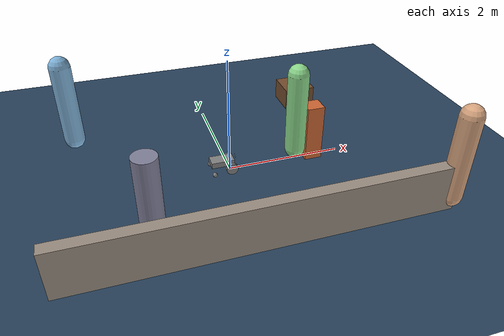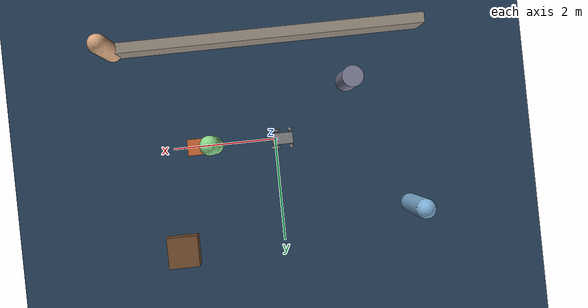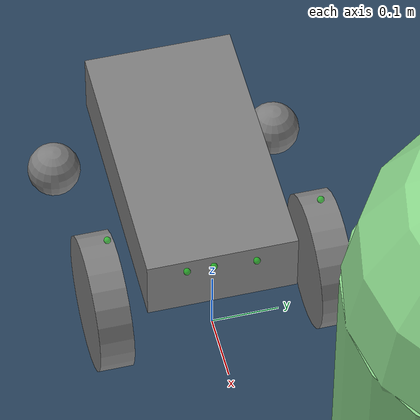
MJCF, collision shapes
<mujoco model="scene">
  <include file="magni.xml" />

  <statistic center="0 0 0.3" extent="6" />

  <visual>
    <headlight diffuse="0.6 0.6 0.6" ambient="0.3 0.3 0.3" specular="0 0 0" />
    <rgba haze="0.15 0.25 0.35 1" />
    <global azimuth="160" elevation="-20" />
  </visual>

  <asset>
    <texture type="skybox" builtin="gradient" rgb1="0.3 0.5 0.7" rgb2="0 0 0" width="512"
      height="3072" />
    <texture type="2d" name="groundplane" builtin="checker" mark="edge" rgb1="0.2 0.3 0.4"
      rgb2="0.1 0.2 0.3"
      markrgb="0.8 0.8 0.8" width="300" height="300" />
    <material name="groundplane" texture="groundplane" texuniform="true" texrepeat="5 5"
      reflectance="0.2" />
  </asset>

  <worldbody>
    <light pos="0 0 3.5" dir="0 0 -1" directional="true" />
    <geom name="floor" size="0 0 0.05" pos="0 0 0" type="plane" material="groundplane" />

    <geom name="obstacle"   type="box"      pos="1.5 0 0.5"     size="0.15 0.15 0.5"  rgba="0.8 0.4 0.2 1" />
    <geom name="column"     type="cylinder" pos="-1.5 -1 0.6"   size="0.2 0.6"        rgba="0.5 0.5 0.6 1" />
    <geom name="crate"      type="box"      pos="2 2 0.2"       size="0.3 0.3 0.2"    rgba="0.45 0.30 0.18 1" />
    <geom name="wall_south" type="box"      pos="0 -2 0.4"      size="3 0.1 0.4"      rgba="0.6 0.55 0.5 1" />

    <body name="human_a" mocap="true" pos="3 -2 0.9">
      <geom type="capsule" fromto="0 0 -0.7 0 0 0.7" size="0.18" rgba="0.85 0.65 0.5 1" />
    </body>
    <body name="human_b" mocap="true" pos="-2.5 1.5 0.9">
      <geom type="capsule" fromto="0 0 -0.7 0 0 0.7" size="0.18" rgba="0.5 0.7 0.85 1" />
    </body>
    <body name="human_c" mocap="true" pos="1.2 0 0.9">
      <geom type="capsule" fromto="0 0 -0.7 0 0 0.7" size="0.18" rgba="0.55 0.85 0.55 1" />
    </body>

    <camera name="overhead" pos="0 0 3" xyaxes="1 0 0 0 1 0" mode="fixed" />
    <camera name="follow"   pos="-1.5 -1.5 1.2" mode="targetbody" target="base" />
    <camera name="side"     pos="0 -2.5 0.5"    mode="targetbody" target="base" />
  </worldbody>
</mujoco>

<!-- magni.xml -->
<mujoco model="magni">
    <compiler angle="radian" meshdir="./assets" />
    <option timestep="0.002" integrator="implicitfast" />

    <default>
        <default class="visual">
            <geom type="mesh" contype="0" conaffinity="0" group="2" density="0" />
        </default>
        <default class="collision">
            <geom group="3" />
        </default>
        <default class="wheel">
            <joint type="hinge" axis="1 0 0" damping="0.1"
                armature="0.005" frictionloss="0.05" />
        </default>
    </default>

    <asset>
        <material name="chassis_light"    rgba="0.7922 0.8196 0.9333 1.0000" />
        <material name="accent_navy"      rgba="0.0000 0.0000 0.3765 1.0000" />
        <material name="hubcap_dark"      rgba="0.1373 0.1373 0.1373 1.0000" />
        <material name="axlecap_grey"     rgba="0.5020 0.5020 0.5020 1.0000" />
        <material name="body_black"       rgba="0.0588 0.0588 0.0863 1.0000" />
        <material name="body_blue"        rgba="0.0039 0.1216 0.4196 1.0000" />
        <material name="body_blue_dark"   rgba="0.0039 0.1294 0.2275 1.0000" />
        <material name="sonar_pcb"        rgba="0.0000 0.0000 0.5020 1.0000" />
        <material name="sonar_housing"    rgba="0.6667 0.6980 0.7686 1.0000" />
        <material name="sonar_led"        rgba="0.1373 0.2941 0.7490 1.0000" />
        <material name="sonar_chip"       rgba="0.0706 0.0706 0.0706 1.0000" />
        <material name="sonar_transducer" rgba="0.8941 0.9137 0.9294 1.0000" />

        <mesh name="caster_wheel__0" file="parts/caster_wheel__0.stl" inertia="shell" />
        <mesh name="caster_wheel__1" file="parts/caster_wheel__1.stl" inertia="shell" />
        <mesh name="caster_wheel__2" file="parts/caster_wheel__2.stl" inertia="shell" />
        <mesh name="caster_wheel__3" file="parts/caster_wheel__3.stl" inertia="shell" />
        <mesh name="caster_wheel__4" file="parts/caster_wheel__4.stl" inertia="shell" />
        <mesh name="caster_wheel__5" file="parts/caster_wheel__5.stl" inertia="shell" />
        <mesh name="front_wheel__0" file="parts/front_wheel__0.stl" inertia="shell" />
        <mesh name="front_wheel__1" file="parts/front_wheel__1.stl" inertia="shell" />
        <mesh name="front_wheel__2" file="parts/front_wheel__2.stl" inertia="shell" />
        <mesh name="magni_body__0" file="parts/magni_body__0.stl" inertia="shell" />
        <mesh name="magni_body__1" file="parts/magni_body__1.stl" inertia="shell" />
        <mesh name="magni_body__2" file="parts/magni_body__2.stl" inertia="shell" />
        <mesh name="magni_body__3" file="parts/magni_body__3.stl" inertia="shell" />
        <mesh name="magni_body__4" file="parts/magni_body__4.stl" inertia="shell" />
        <mesh name="sonar_hc-sr04__0" file="parts/sonar_hc-sr04__0.stl" inertia="shell" />
        <mesh name="sonar_hc-sr04__1" file="parts/sonar_hc-sr04__1.stl" inertia="shell" />
        <mesh name="sonar_hc-sr04__2" file="parts/sonar_hc-sr04__2.stl" inertia="shell" />
        <mesh name="sonar_hc-sr04__3" file="parts/sonar_hc-sr04__3.stl" inertia="shell" />
        <mesh name="sonar_hc-sr04__4" file="parts/sonar_hc-sr04__4.stl" inertia="shell" />
    </asset>

    <worldbody>
        <body name="base" pos="0 0 0.1">
            <freejoint />
            <inertial pos="-0.15 0 0.03" quat="0 0.707107 0 0.707107" mass="10"
                diaginertia="0.172704 0.150753 0.0594508" />
            <site name="imu" pos="0 0 0" size="0.01" rgba="1 0 0 0.5" />
            <body name="body" pos="-0.11 0 -0.029" quat="1 0 0 0">
                <inertial pos="-0.03 0 0.11" mass="1.0"
                    diaginertia="0.02 0.025 0.03" />
                <geom class="collision" type="box" pos="-0.03 0 0.11"
                    size="0.2 0.11 0.05" />
                <geom class="visual" mesh="magni_body__0" material="body_black" />
                <geom class="visual" mesh="magni_body__1" material="body_blue" />
                <geom class="visual" mesh="magni_body__2" material="body_blue" />
                <geom class="visual" mesh="magni_body__3" material="body_blue_dark" />
                <geom class="visual" mesh="magni_body__4" material="body_blue" />
            </body>
            <body name="left_caster_yoke" pos="-0.279 0.17 -0.01" quat="0 0 0 1">
                <inertial pos="0 0 -0.025" mass="0.15"
                    diaginertia="1e-4 1e-4 1e-4" />
                <joint name="left_caster_swivel" type="hinge" axis="0 0 1"
                    damping="0.005" />
                <geom class="visual" mesh="caster_wheel__0" material="chassis_light" />
                <geom class="visual" mesh="caster_wheel__1" material="chassis_light" />
                <geom class="visual" mesh="caster_wheel__2" material="chassis_light" />
                <geom class="visual" mesh="caster_wheel__3" material="chassis_light" />
                <geom class="visual" mesh="caster_wheel__4" material="accent_navy" />
                <geom class="visual" mesh="caster_wheel__5" material="chassis_light" />
                <body name="left_caster_wheel" pos="0.025 0 -0.05">
                    <inertial pos="0 0 0" mass="0.05"
                        diaginertia="3e-5 3e-5 3e-5" />
                    <joint name="left_caster_roll" type="hinge" axis="0 1 0"
                        damping="0.001" />
                    <geom class="collision" type="sphere" size="0.04"
                        friction="1 0.005 0.0001" />
                </body>
            </body>
            <body name="right_caster_yoke" pos="-0.279 -0.17 -0.01" quat="0 0 0 1">
                <inertial pos="0 0 -0.025" mass="0.15"
                    diaginertia="1e-4 1e-4 1e-4" />
                <joint name="right_caster_swivel" type="hinge" axis="0 0 1"
                    damping="0.005" />
                <geom class="visual" mesh="caster_wheel__0" material="chassis_light" />
                <geom class="visual" mesh="caster_wheel__1" material="chassis_light" />
                <geom class="visual" mesh="caster_wheel__2" material="chassis_light" />
                <geom class="visual" mesh="caster_wheel__3" material="chassis_light" />
                <geom class="visual" mesh="caster_wheel__4" material="accent_navy" />
                <geom class="visual" mesh="caster_wheel__5" material="chassis_light" />
                <body name="right_caster_wheel" pos="0.025 0 -0.05">
                    <inertial pos="0 0 0" mass="0.05"
                        diaginertia="3e-5 3e-5 3e-5" />
                    <joint name="right_caster_roll" type="hinge" axis="0 1 0"
                        damping="0.001" />
                    <geom class="collision" type="sphere" size="0.04"
                        friction="1 0.005 0.0001" />
                </body>
            </body>
            <body name="left_front_wheel" pos="0 0.163 0" quat="0.707107 0 0 0.707107">
                <inertial pos="0 0 0" quat="0.5 0.5 -0.5 0.5" mass="3.34"
                    diaginertia="0.0167 0.00904583 0.00904583" />
                <joint class="wheel" name="left_wheel_joint" />
                <geom class="collision" type="cylinder" size="0.1"
                    fromto="-0.025 0 0 0.025 0 0" />
                <geom class="visual" pos="-0.071 0 0" mesh="front_wheel__0"
                    material="chassis_light" />
                <geom class="visual" pos="-0.071 0 0" mesh="front_wheel__1"
                    material="hubcap_dark" />
                <geom class="visual" pos="-0.071 0 0" mesh="front_wheel__2"
                    material="axlecap_grey" />
            </body>
            <body name="right_front_wheel" pos="0 -0.163 0" quat="0.707107 0 0 0.707107">
                <inertial pos="0 0 0" quat="0.5 0.5 -0.5 0.5" mass="3.34"
                    diaginertia="0.0167 0.00904583 0.00904583" />
                <joint class="wheel" name="right_wheel_joint" />
                <geom class="collision" type="cylinder" size="0.1"
                    fromto="-0.025 0 0 0.025 0 0" />
                <geom class="visual" pos="0.071 0 0" quat="0 0 -1 0" mesh="front_wheel__0"
                    material="chassis_light" />
                <geom class="visual" pos="0.071 0 0" quat="0 0 -1 0" mesh="front_wheel__1"
                    material="hubcap_dark" />
                <geom class="visual" pos="0.071 0 0" quat="0 0 -1 0" mesh="front_wheel__2"
                    material="axlecap_grey" />
            </body>
            <body name="sonar_0" pos="0.01 -0.14 0.15" quat="0.707107 0 0 -0.707107">
                <inertial pos="0 0 0" mass="0.01"
                    diaginertia="1e-6 2e-6 2e-6" />
                <site name="sonar_0_site" pos="0.015 0 0" zaxis="1 0 0"
                    size="0.005" rgba="0 1 0 0.5" />
                <geom class="visual" pos="-0.006 0 0" quat="0.5 0.5 0.5 0.5" mesh="sonar_hc-sr04__0"
                    material="sonar_pcb" />
                <geom class="visual" pos="-0.006 0 0" quat="0.5 0.5 0.5 0.5" mesh="sonar_hc-sr04__1"
                    material="sonar_housing" />
                <geom class="visual" pos="-0.006 0 0" quat="0.5 0.5 0.5 0.5" mesh="sonar_hc-sr04__2"
                    material="sonar_led" />
                <geom class="visual" pos="-0.006 0 0" quat="0.5 0.5 0.5 0.5" mesh="sonar_hc-sr04__3"
                    material="sonar_chip" />
                <geom class="visual" pos="-0.006 0 0" quat="0.5 0.5 0.5 0.5" mesh="sonar_hc-sr04__4"
                    material="sonar_transducer" />
            </body>
            <body name="sonar_1" pos="0.08 -0.07 0.15" quat="0.923956 0 0 0.382499">
                <inertial pos="0 0 0" mass="0.01"
                    diaginertia="1e-6 2e-6 2e-6" />
                <site name="sonar_1_site" pos="0.015 0 0" zaxis="1 0 0"
                    size="0.005" rgba="0 1 0 0.5" />
                <geom class="visual" pos="-0.006 0 0" quat="0.5 0.5 0.5 0.5" mesh="sonar_hc-sr04__0"
                    material="sonar_pcb" />
                <geom class="visual" pos="-0.006 0 0" quat="0.5 0.5 0.5 0.5" mesh="sonar_hc-sr04__1"
                    material="sonar_housing" />
                <geom class="visual" pos="-0.006 0 0" quat="0.5 0.5 0.5 0.5" mesh="sonar_hc-sr04__2"
                    material="sonar_led" />
                <geom class="visual" pos="-0.006 0 0" quat="0.5 0.5 0.5 0.5" mesh="sonar_hc-sr04__3"
                    material="sonar_chip" />
                <geom class="visual" pos="-0.006 0 0" quat="0.5 0.5 0.5 0.5" mesh="sonar_hc-sr04__4"
                    material="sonar_transducer" />
            </body>
            <body name="sonar_2" pos="0.08 -0.01 0.15" quat="0.923956 0 0 -0.382499">
                <inertial pos="0 0 0" mass="0.01"
                    diaginertia="1e-6 2e-6 2e-6" />
                <site name="sonar_2_site" pos="0.015 0 0" zaxis="1 0 0"
                    size="0.005" rgba="0 1 0 0.5" />
                <geom class="visual" pos="-0.006 0 0" quat="0.5 0.5 0.5 0.5" mesh="sonar_hc-sr04__0"
                    material="sonar_pcb" />
                <geom class="visual" pos="-0.006 0 0" quat="0.5 0.5 0.5 0.5" mesh="sonar_hc-sr04__1"
                    material="sonar_housing" />
                <geom class="visual" pos="-0.006 0 0" quat="0.5 0.5 0.5 0.5" mesh="sonar_hc-sr04__2"
                    material="sonar_led" />
                <geom class="visual" pos="-0.006 0 0" quat="0.5 0.5 0.5 0.5" mesh="sonar_hc-sr04__3"
                    material="sonar_chip" />
                <geom class="visual" pos="-0.006 0 0" quat="0.5 0.5 0.5 0.5" mesh="sonar_hc-sr04__4"
                    material="sonar_transducer" />
            </body>
            <body name="sonar_3" pos="0.08 0.04 0.15">
                <inertial pos="0 0 0" mass="0.01"
                    diaginertia="1e-6 2e-6 2e-6" />
                <site name="sonar_3_site" pos="0.015 0 0" zaxis="1 0 0"
                    size="0.005" rgba="0 1 0 0.5" />
                <geom class="visual" pos="-0.006 0 0" quat="0.5 0.5 0.5 0.5" mesh="sonar_hc-sr04__0"
                    material="sonar_pcb" />
                <geom class="visual" pos="-0.006 0 0" quat="0.5 0.5 0.5 0.5" mesh="sonar_hc-sr04__1"
                    material="sonar_housing" />
                <geom class="visual" pos="-0.006 0 0" quat="0.5 0.5 0.5 0.5" mesh="sonar_hc-sr04__2"
                    material="sonar_led" />
                <geom class="visual" pos="-0.006 0 0" quat="0.5 0.5 0.5 0.5" mesh="sonar_hc-sr04__3"
                    material="sonar_chip" />
                <geom class="visual" pos="-0.006 0 0" quat="0.5 0.5 0.5 0.5" mesh="sonar_hc-sr04__4"
                    material="sonar_transducer" />
            </body>
            <body name="sonar_4" pos="0.01 0.14 0.15" quat="0.707107 0 0 0.707107">
                <inertial pos="0 0 0" mass="0.01"
                    diaginertia="1e-6 2e-6 2e-6" />
                <site name="sonar_4_site" pos="0.015 0 0" zaxis="1 0 0"
                    size="0.005" rgba="0 1 0 0.5" />
                <geom class="visual" pos="-0.006 0 0" quat="0.5 0.5 0.5 0.5" mesh="sonar_hc-sr04__0"
                    material="sonar_pcb" />
                <geom class="visual" pos="-0.006 0 0" quat="0.5 0.5 0.5 0.5" mesh="sonar_hc-sr04__1"
                    material="sonar_housing" />
                <geom class="visual" pos="-0.006 0 0" quat="0.5 0.5 0.5 0.5" mesh="sonar_hc-sr04__2"
                    material="sonar_led" />
                <geom class="visual" pos="-0.006 0 0" quat="0.5 0.5 0.5 0.5" mesh="sonar_hc-sr04__3"
                    material="sonar_chip" />
                <geom class="visual" pos="-0.006 0 0" quat="0.5 0.5 0.5 0.5" mesh="sonar_hc-sr04__4"
                    material="sonar_transducer" />
            </body>
        </body>
    </worldbody>

    <contact>
        <exclude body1="body" body2="left_front_wheel" />
        <exclude body1="body" body2="right_front_wheel" />
        <exclude body1="body" body2="left_caster_yoke" />
        <exclude body1="body" body2="right_caster_yoke" />
        <exclude body1="body" body2="left_caster_wheel" />
        <exclude body1="body" body2="right_caster_wheel" />
    </contact>

    <actuator>
        <velocity name="left_wheel"  joint="left_wheel_joint"  kv="10" ctrlrange="-10 10" />
        <velocity name="right_wheel" joint="right_wheel_joint" kv="10" ctrlrange="-10 10" />
    </actuator>

    <keyframe>
        <key name="home"
            qpos="0 0 0.0998  1 0 0 0  0 0  0 0  0 0" />
    </keyframe>

    <sensor>
        <gyro          name="imu_gyro"        site="imu" />
        <accelerometer name="imu_acc"         site="imu" />
        <framepos      name="base_pos"        objtype="site" objname="imu" />
        <framequat     name="base_quat"       objtype="site" objname="imu" />
        <jointpos      name="left_wheel_pos"  joint="left_wheel_joint" />
        <jointpos      name="right_wheel_pos" joint="right_wheel_joint" />
        <jointvel      name="left_wheel_vel"  joint="left_wheel_joint" />
        <jointvel      name="right_wheel_vel" joint="right_wheel_joint" />
        <rangefinder   name="sonar_0" site="sonar_0_site" cutoff="4" />
        <rangefinder   name="sonar_1" site="sonar_1_site" cutoff="4" />
        <rangefinder   name="sonar_2" site="sonar_2_site" cutoff="4" />
        <rangefinder   name="sonar_3" site="sonar_3_site" cutoff="4" />
        <rangefinder   name="sonar_4" site="sonar_4_site" cutoff="4" />
    </sensor>
</mujoco>
